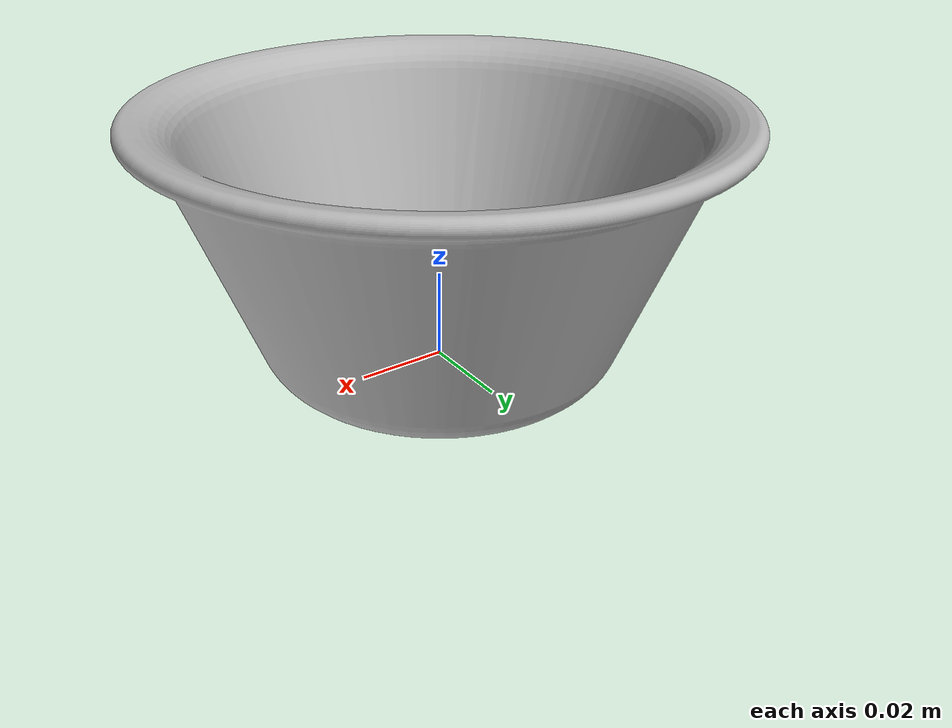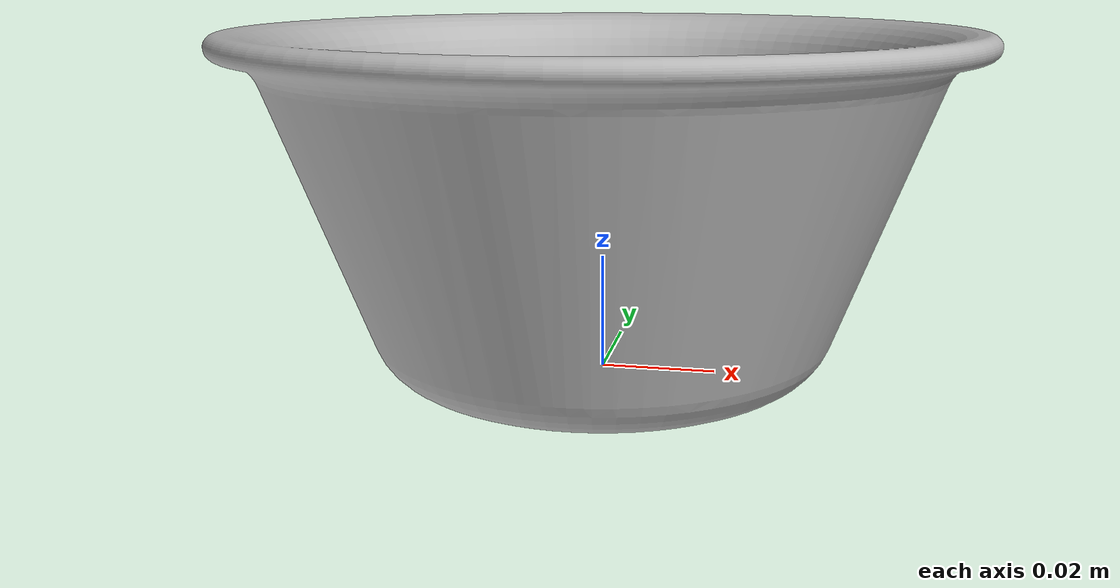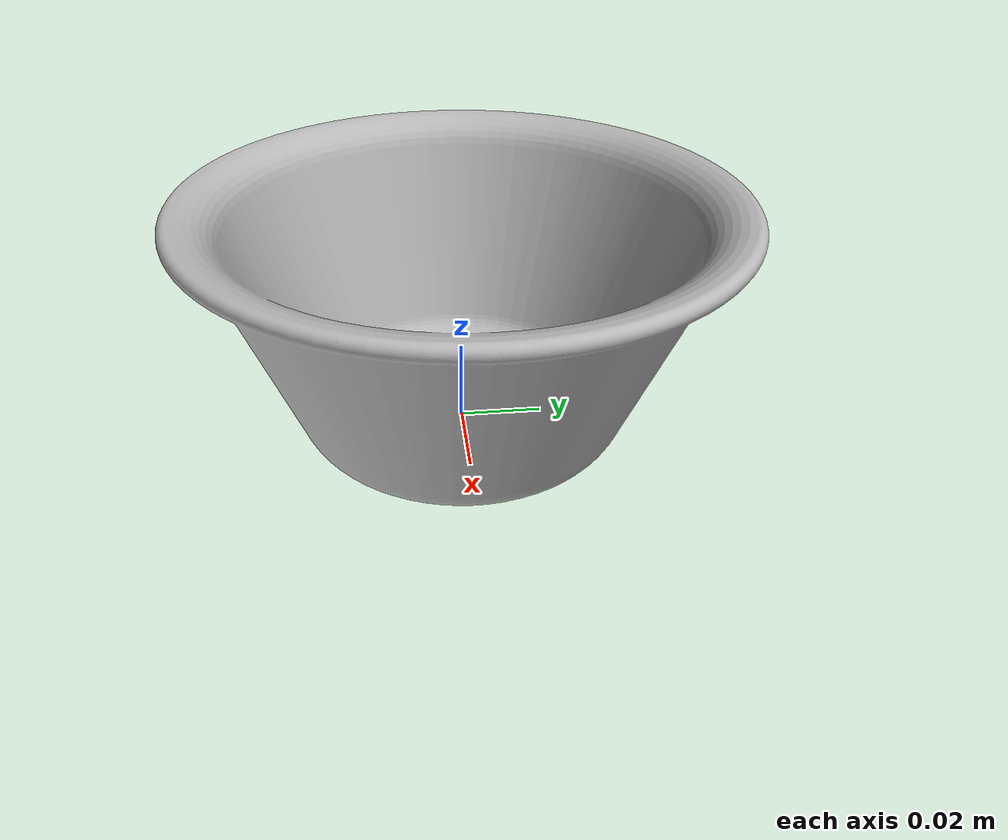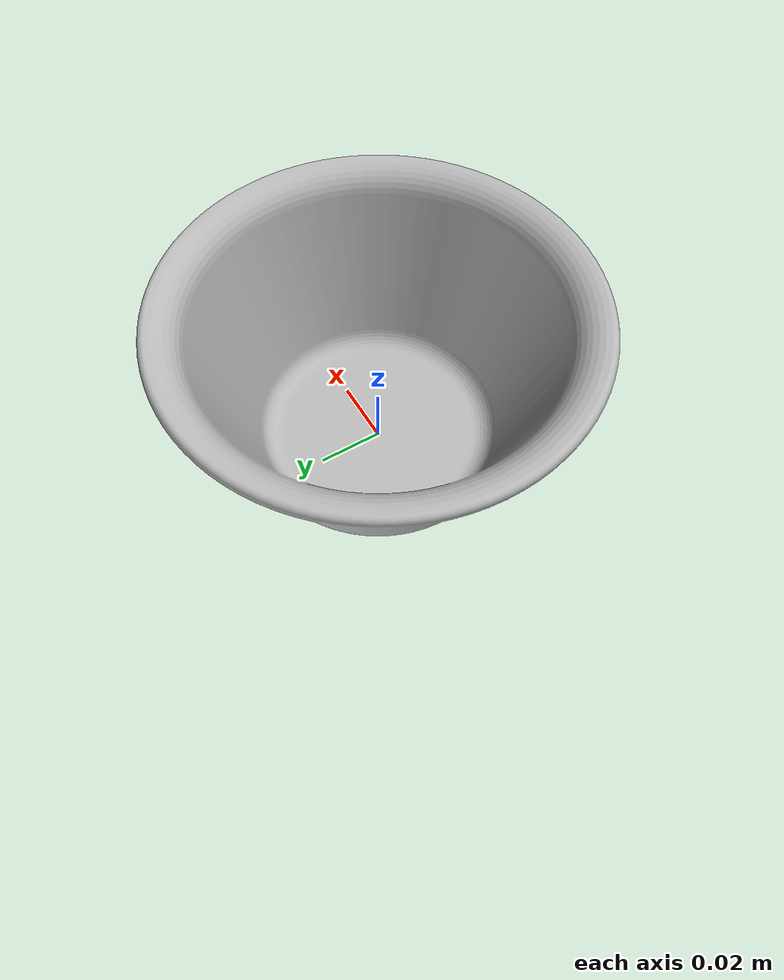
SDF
<?xml version='1.0'?>
<sdf version="1.4">
  <model name="bowl">
    <pose>0 0 0  1.57 0 0</pose>
    <static>false</static>
    <link name="body">
      <inertial>
        <pose>0.13 0.036053 0.13 0 0 0</pose>
        <mass>0.33283</mass>
        <inertia>
          <ixx>0.0017608</ixx>
          <ixy>0.0</ixy>
          <ixz>0.0</ixz>
          <iyy>0.003037</iyy>
          <iyz>0.0</iyz>
          <izz>0.0017608</izz>
        </inertia>
      </inertial>
      <collision name="collision">
          <geometry>
            <mesh>
              <!-- Use a downsampled mesh for collisions -->
              <uri>model://bowl/meshes/model_simple.stl</uri>
              <scale>0.001 0.001 0.001</scale>
            </mesh>
          </geometry>
          <surface>
            <friction>
              <ode>
                <mu>0.8</mu>
                <mu2>0.6</mu2>
              </ode>
            </friction>
        </surface>
      </collision>
      <visual name="visual">
        <geometry>
          <mesh>
            <uri>model://bowl/meshes/model.stl</uri>
            <scale>0.001 0.001 0.001</scale>
          </mesh>
        </geometry>
        <material>
          <script>
            <uri>model://bowl/bowl.material</uri>
            <name>plastic</name>
          </script>
        </material>
      </visual>
    </link>
  </model>
</sdf>
